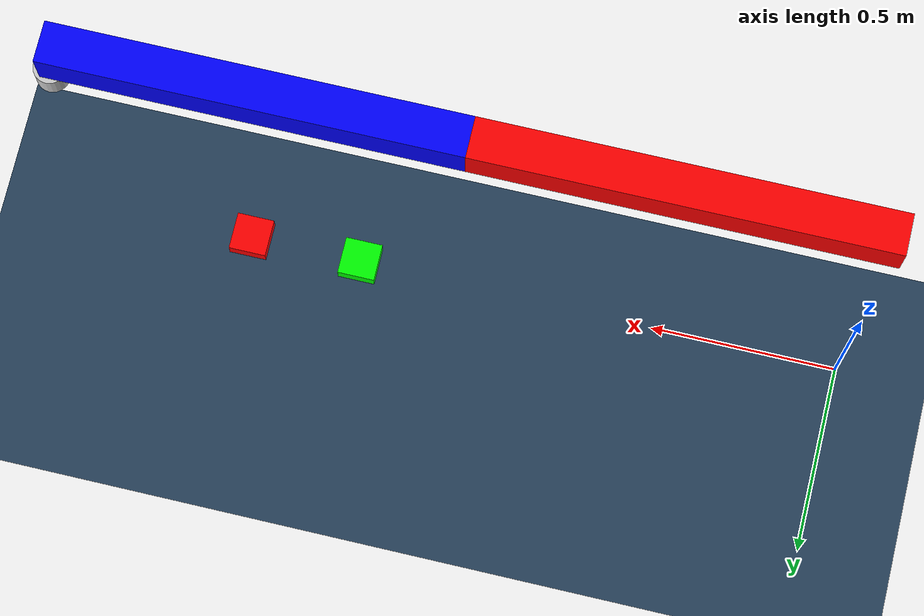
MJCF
<?xml version="1.0" encoding="UTF-8"?>
<mujoco model="vacuum_gripper_scene">
  <!-- angle="radian": MuJoCo's default angle unit is DEGREES; joint ranges and
       ctrlranges below are given in radians. -->
  <compiler fusestatic="false" angle="radian"/>
  <include file="vacuum_robot.xml"/>

  <statistic center="1 0 0.6" extent="2.5"/>

  <visual>
    <headlight diffuse="0.6 0.6 0.6" ambient="0.1 0.1 0.1" specular="0 0 0"/>
    <rgba haze="0.15 0.25 0.35 1"/>
    <global azimuth="120" elevation="-20"/>
  </visual>

  <asset>
    <texture type="skybox" builtin="gradient" rgb1="0.3 0.5 0.7" rgb2="0 0 0" width="512" height="3072"/>
    <texture type="2d" name="groundplane" builtin="checker" mark="edge" rgb1="0.2 0.3 0.4" rgb2="0.1 0.2 0.3"
      markrgb="0.8 0.8 0.8" width="300" height="300"/>
    <material name="groundplane" texture="groundplane" texuniform="true" texrepeat="5 5"/>
  </asset>

  <worldbody>
    <light pos="0 0 1.5" dir="0 0 -1" directional="true"/>
    <geom conaffinity="0" contype="1" material="groundplane" name="floor" pos="0 0 0" size="0 0 0.01" type="plane"/>
    <!-- Pick-up targets: free-joint boxes on the floor, 0.3 m apart. The pad (r = 0.04)
         presses on their top faces (z = 0.04). -->
    <body name="part1" pos="1.6 0 0.02">
      <freejoint/>
      <inertial pos="0 0 0" mass="0.5" diaginertia="0.001 0.001 0.001"/>
      <geom type="box" size="0.05 0.05 0.02" rgba="1 0 0 1"/>
    </body>
    <body name="part2" pos="1.3 0 0.02">
      <freejoint/>
      <inertial pos="0 0 0" mass="0.5" diaginertia="0.001 0.001 0.001"/>
      <geom type="box" size="0.05 0.05 0.02" rgba="0 1 0 1"/>
    </body>
  </worldbody>
  <equality>
    <!-- Inactive welds, one per pick-up. VacuumGripperPlugin activates them at runtime
         (no-snap rewrite of eq_data); body1 = gripper side, body2 = part side. -->
    <weld name="vacuum_weld_part1" body1="vacuum_pad" body2="part1" active="false"/>
    <weld name="vacuum_weld_part2" body1="vacuum_pad" body2="part2" active="false"/>
  </equality>
</mujoco>

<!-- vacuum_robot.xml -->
<mujoco model="vacuum_gripper_robot">
  <compiler fusestatic="false" angle="radian"/>
  <worldbody>
    <body name="upperarm" pos="0 0 1.2">
      <inertial pos="0.5 0 0" mass="27" diaginertia="0.225 0.225 0.0225"/>
      <joint name="joint1" pos="0 0 0" axis="0 1 0" range="-3.14 3.14" actuatorfrcrange="-1000 1000"
             frictionloss="1.0" damping="2.0"/>
      <geom size="0.5 0.05 0.05" pos="0.5 0 0" type="box" rgba="1 0 0 1"/>
      <body name="forearm" pos="1 0 0" gravcomp="1.0">
        <inertial pos="0.5 0 0" mass="27" diaginertia="0.225 0.225 0.0225"/>
        <joint name="joint2" pos="0 0 0" axis="0 1 0" range="-3.14 3.14" actuatorfrcrange="-1000 1000"
               damping="2.0"/>
        <geom size="0.5 0.05 0.05" pos="0.5 0 0" type="box" rgba="0 0 1 1"/>
        <body name="vacuum_pad" pos="1.0 0 -0.15">
          <inertial pos="0 0 0" mass="0.5" diaginertia="0.001 0.001 0.001"/>
          <geom type="cylinder" size="0.04 0.03" rgba="0.8 0.8 0.8 1"/>
        </body>
        <site name="forearm" pos="0 0 0" quat="1.0 0 0 0"/>
      </body>
      <site name="upperarm" pos="0 0 0" quat="1.0 0 0 0"/>
    </body>
    <site name="world" pos="0 0 0" quat="1.0 0 0 0"/>
    <site name="base" pos="0 0 1.2" quat="1.0 0 0 0"/>
  </worldbody>
  <option integrator="implicitfast"/>
  <actuator>
    <position name="joint1" joint="joint1" kp="25000" dampratio="1.0" ctrlrange="-3.14159 3.14159"/>
    <position name="joint2" joint="joint2" kp="25000" dampratio="1.0" ctrlrange="-3.14159 3.14159"/>
  </actuator>
</mujoco>
